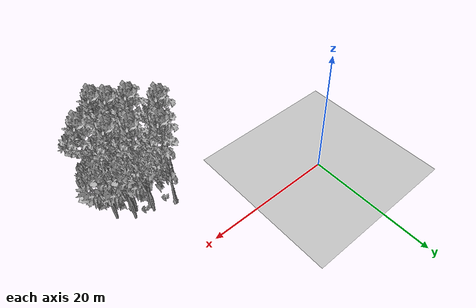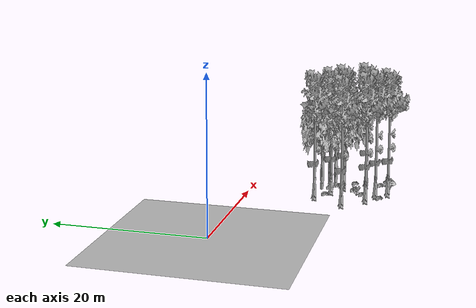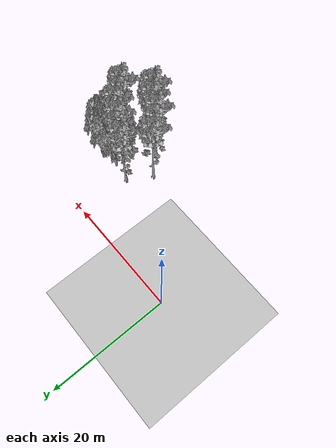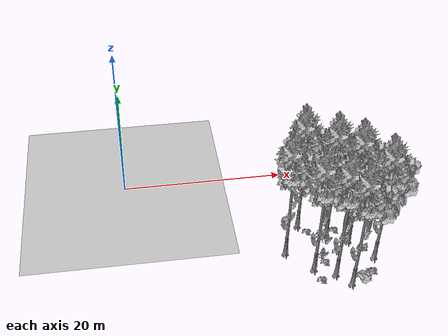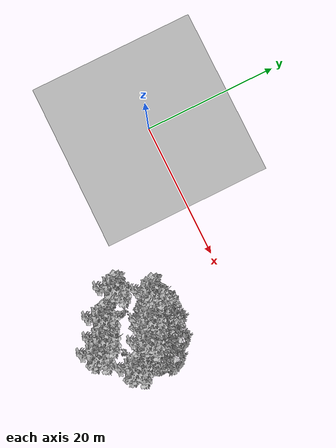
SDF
<sdf version="1.7">
 <world name="default">
  <model name="ground_plane">
   <static>1</static>
   <link name="link">
    <collision name="collision">
     <pose>-50 0 0 0 -0 0</pose>
     <geometry><plane><normal>0 0 1</normal><size>80 80</size></plane></geometry>
     <surface><contact><ode><min_depth>0.01</min_depth><max_vel>0</max_vel></ode></contact></surface>
    </collision>
    <visual name="grass">
     <cast_shadows>0</cast_shadows>
     <geometry>
      <mesh>
       <scale>0.46714285714285714 0.46714285714285714 0.1</scale>
       <uri>file://grass_plane/meshes/grass_plane.dae</uri>
      </mesh>
     </geometry>
    </visual>
   </link>
  </model>
  <model name="Tree 169">
   <static>1</static>
   <pose>17.92057606856249 -13.187530854886926 0 1.57079 -0 0</pose>
   <link name="link">
    <collision name="collision">
     <geometry><mesh><scale>3.5 5 3.5</scale><uri>model://tree_9/meshes/tree_9.obj</uri></mesh></geometry>
    </collision>
    <visual name="visual">
     <geometry><mesh><scale>3.5 5 3.5</scale><uri>model://tree_9/meshes/tree_9.obj</uri></mesh></geometry>
    </visual>
   </link>
  </model>
  <model name="Tree 199">
   <static>1</static>
   <pose>20.619014263557943 -16.028458868796307 0 1.57079 -0 0</pose>
   <link name="link">
    <collision name="collision">
     <geometry><mesh><scale>3.5 5 3.5</scale><uri>model://tree_9/meshes/tree_9.obj</uri></mesh></geometry>
    </collision>
    <visual name="visual">
     <geometry><mesh><scale>3.5 5 3.5</scale><uri>model://tree_9/meshes/tree_9.obj</uri></mesh></geometry>
    </visual>
   </link>
  </model>
  <model name="Tree 200">
   <static>1</static>
   <pose>28.03792022278185 -11.964705620287923 0 1.57079 -0 0</pose>
   <link name="link">
    <collision name="collision">
     <geometry><mesh><scale>3.5 5 3.5</scale><uri>model://tree_2/meshes/tree_2.obj</uri></mesh></geometry>
    </collision>
    <visual name="visual">
     <geometry><mesh><scale>3.5 5 3.5</scale><uri>model://tree_2/meshes/tree_2.obj</uri></mesh></geometry>
    </visual>
   </link>
  </model>
  <model name="Tree 317">
   <static>1</static>
   <pose>23.50075010087418 -9.61814095129651 0 1.57079 -0 0</pose>
   <link name="link">
    <collision name="collision">
     <geometry><mesh><scale>3.5 5 3.5</scale><uri>model://tree_2/meshes/tree_2.obj</uri></mesh></geometry>
    </collision>
    <visual name="visual">
     <geometry><mesh><scale>3.5 5 3.5</scale><uri>model://tree_2/meshes/tree_2.obj</uri></mesh></geometry>
    </visual>
   </link>
  </model>
  <model name="Tree 393">
   <static>1</static>
   <pose>22.90119774720761 -17.07613037660554 0 1.57079 -0 0</pose>
   <link name="link">
    <collision name="collision">
     <geometry><mesh><scale>3.5 5 3.5</scale><uri>model://tree_9/meshes/tree_9.obj</uri></mesh></geometry>
    </collision>
    <visual name="visual">
     <geometry><mesh><scale>3.5 5 3.5</scale><uri>model://tree_9/meshes/tree_9.obj</uri></mesh></geometry>
    </visual>
   </link>
  </model>
  <model name="Tree 399">
   <static>1</static>
   <pose>20.305927228024046 -9.129980886558098 0 1.57079 -0 0</pose>
   <link name="link">
    <collision name="collision">
     <geometry><mesh><scale>3.5 5 3.5</scale><uri>model://tree_9/meshes/tree_9.obj</uri></mesh></geometry>
    </collision>
    <visual name="visual">
     <geometry><mesh><scale>3.5 5 3.5</scale><uri>model://tree_9/meshes/tree_9.obj</uri></mesh></geometry>
    </visual>
   </link>
  </model>
  <model name="Tree 463">
   <static>1</static>
   <pose>25.41053228989219 -11.221363321497677 0 1.57079 -0 0</pose>
   <link name="link">
    <collision name="collision">
     <geometry><mesh><scale>3.5 5 3.5</scale><uri>model://tree_2/meshes/tree_2.obj</uri></mesh></geometry>
    </collision>
    <visual name="visual">
     <geometry><mesh><scale>3.5 5 3.5</scale><uri>model://tree_2/meshes/tree_2.obj</uri></mesh></geometry>
    </visual>
   </link>
  </model>
  <model name="Tree 477">
   <static>1</static>
   <pose>27.968695856251713 -15.156036403824302 0 1.57079 -0 0</pose>
   <link name="link">
    <collision name="collision">
     <geometry><mesh><scale>3.5 5 3.5</scale><uri>model://tree_9/meshes/tree_9.obj</uri></mesh></geometry>
    </collision>
    <visual name="visual">
     <geometry><mesh><scale>3.5 5 3.5</scale><uri>model://tree_9/meshes/tree_9.obj</uri></mesh></geometry>
    </visual>
   </link>
  </model>
  <model name="Tree 492">
   <static>1</static>
   <pose>24.339763761047642 -18.609069851608353 0 1.57079 -0 0</pose>
   <link name="link">
    <collision name="collision">
     <geometry><mesh><scale>3.5 5 3.5</scale><uri>model://tree_9/meshes/tree_9.obj</uri></mesh></geometry>
    </collision>
    <visual name="visual">
     <geometry><mesh><scale>3.5 5 3.5</scale><uri>model://tree_9/meshes/tree_9.obj</uri></mesh></geometry>
    </visual>
   </link>
  </model>
  <model name="Tree 517">
   <static>1</static>
   <pose>25.71173140810862 -12.33746298757353 0 1.57079 -0 0</pose>
   <link name="link">
    <collision name="collision">
     <geometry><mesh><scale>3.5 5 3.5</scale><uri>model://tree_9/meshes/tree_9.obj</uri></mesh></geometry>
    </collision>
    <visual name="visual">
     <geometry><mesh><scale>3.5 5 3.5</scale><uri>model://tree_9/meshes/tree_9.obj</uri></mesh></geometry>
    </visual>
   </link>
  </model>
  <model name="Tree 567">
   <static>1</static>
   <pose>23.402231705682823 -10.904667853027405 0 1.57079 -0 0</pose>
   <link name="link">
    <collision name="collision">
     <geometry><mesh><scale>3.5 5 3.5</scale><uri>model://tree_9/meshes/tree_9.obj</uri></mesh></geometry>
    </collision>
    <visual name="visual">
     <geometry><mesh><scale>3.5 5 3.5</scale><uri>model://tree_9/meshes/tree_9.obj</uri></mesh></geometry>
    </visual>
   </link>
  </model>
  <model name="Tree 610">
   <static>1</static>
   <pose>26.07221603397302 -10.278409194020828 0 1.57079 -0 0</pose>
   <link name="link">
    <collision name="collision">
     <geometry><mesh><scale>3.5 5 3.5</scale><uri>model://tree_2/meshes/tree_2.obj</uri></mesh></geometry>
    </collision>
    <visual name="visual">
     <geometry><mesh><scale>3.5 5 3.5</scale><uri>model://tree_2/meshes/tree_2.obj</uri></mesh></geometry>
    </visual>
   </link>
  </model>
  <model name="Bush 87">
   <static>1</static>
   <pose>27.045714401822096 -13.76837720139326 0 1.57079 -0 0</pose>
   <link name="link">
    <collision name="collision">
     <geometry><mesh><scale>2 2 2</scale><uri>model://bush_2/meshes/bush_2.obj</uri></mesh></geometry>
     <surface><contact><collide_without_contact>false</collide_without_contact></contact></surface>
    </collision>
    <visual name="visual">
     <geometry><mesh><scale>2 2 2</scale><uri>model://bush_2/meshes/bush_2.obj</uri></mesh></geometry>
    </visual>
   </link>
  </model>
  <model name="Bush 200">
   <static>1</static>
   <pose>22.963457230477125 -12.528652910418778 0 1.57079 -0 0</pose>
   <link name="link">
    <collision name="collision">
     <geometry><mesh><scale>2 2 2</scale><uri>model://bush_4/meshes/bush_4.obj</uri></mesh></geometry>
     <surface><contact><collide_without_contact>false</collide_without_contact></contact></surface>
    </collision>
    <visual name="visual">
     <geometry><mesh><scale>2 2 2</scale><uri>model://bush_4/meshes/bush_4.obj</uri></mesh></geometry>
    </visual>
   </link>
  </model>
  <model name="Bush 214">
   <static>1</static>
   <pose>22.073234687014086 -15.385571713509172 0 1.57079 -0 0</pose>
   <link name="link">
    <collision name="collision">
     <geometry><mesh><scale>2 2 2</scale><uri>model://bush_2/meshes/bush_2.obj</uri></mesh></geometry>
     <surface><contact><collide_without_contact>false</collide_without_contact></contact></surface>
    </collision>
    <visual name="visual">
     <geometry><mesh><scale>2 2 2</scale><uri>model://bush_2/meshes/bush_2.obj</uri></mesh></geometry>
    </visual>
   </link>
  </model>
  <model name="Bush 249">
   <static>1</static>
   <pose>27.0674517694072 -17.32573760603973 0 1.57079 -0 0</pose>
   <link name="link">
    <collision name="collision">
     <geometry><mesh><scale>2 2 2</scale><uri>model://bush_2/meshes/bush_2.obj</uri></mesh></geometry>
     <surface><contact><collide_without_contact>false</collide_without_contact></contact></surface>
    </collision>
    <visual name="visual">
     <geometry><mesh><scale>2 2 2</scale><uri>model://bush_2/meshes/bush_2.obj</uri></mesh></geometry>
    </visual>
   </link>
  </model>
  <model name="Bush 262">
   <static>1</static>
   <pose>25.596800140480738 -11.588161427039239 0 1.57079 -0 0</pose>
   <link name="link">
    <collision name="collision">
     <geometry><mesh><scale>2 2 2</scale><uri>model://bush_2/meshes/bush_2.obj</uri></mesh></geometry>
     <surface><contact><collide_without_contact>false</collide_without_contact></contact></surface>
    </collision>
    <visual name="visual">
     <geometry><mesh><scale>2 2 2</scale><uri>model://bush_2/meshes/bush_2.obj</uri></mesh></geometry>
    </visual>
   </link>
  </model>
  <model name="Bush 275">
   <static>1</static>
   <pose>24.379955539215864 -10.627065782127065 0 1.57079 -0 0</pose>
   <link name="link">
    <collision name="collision">
     <geometry><mesh><scale>2 2 2</scale><uri>model://bush_2/meshes/bush_2.obj</uri></mesh></geometry>
     <surface><contact><collide_without_contact>false</collide_without_contact></contact></surface>
    </collision>
    <visual name="visual">
     <geometry><mesh><scale>2 2 2</scale><uri>model://bush_2/meshes/bush_2.obj</uri></mesh></geometry>
    </visual>
   </link>
  </model>
  <model name="Bush 278">
   <static>1</static>
   <pose>21.09691618161405 -10.474166208463743 0 1.57079 -0 0</pose>
   <link name="link">
    <collision name="collision">
     <geometry><mesh><scale>2 2 2</scale><uri>model://bush_2/meshes/bush_2.obj</uri></mesh></geometry>
     <surface><contact><collide_without_contact>false</collide_without_contact></contact></surface>
    </collision>
    <visual name="visual">
     <geometry><mesh><scale>2 2 2</scale><uri>model://bush_2/meshes/bush_2.obj</uri></mesh></geometry>
    </visual>
   </link>
  </model>
  <model name="Bush 349">
   <static>1</static>
   <pose>23.803326879416936 -14.027966413198989 0 1.57079 -0 0</pose>
   <link name="link">
    <collision name="collision">
     <geometry><mesh><scale>2 2 2</scale><uri>model://bush_2/meshes/bush_2.obj</uri></mesh></geometry>
     <surface><contact><collide_without_contact>false</collide_without_contact></contact></surface>
    </collision>
    <visual name="visual">
     <geometry><mesh><scale>2 2 2</scale><uri>model://bush_2/meshes/bush_2.obj</uri></mesh></geometry>
    </visual>
   </link>
  </model>
  <model name="Bush 472">
   <static>1</static>
   <pose>25.577228794848565 -18.77005870031251 0 1.57079 -0 0</pose>
   <link name="link">
    <collision name="collision">
     <geometry><mesh><scale>2 2 2</scale><uri>model://bush_1/meshes/bush_1.obj</uri></mesh></geometry>
     <surface><contact><collide_without_contact>false</collide_without_contact></contact></surface>
    </collision>
    <visual name="visual">
     <geometry><mesh><scale>2 2 2</scale><uri>model://bush_1/meshes/bush_1.obj</uri></mesh></geometry>
    </visual>
   </link>
  </model>
  <model name="Bush 488">
   <static>1</static>
   <pose>21.92183944596693 -14.6847893400085 0 1.57079 -0 0</pose>
   <link name="link">
    <collision name="collision">
     <geometry><mesh><scale>2 2 2</scale><uri>model://bush_4/meshes/bush_4.obj</uri></mesh></geometry>
     <surface><contact><collide_without_contact>false</collide_without_contact></contact></surface>
    </collision>
    <visual name="visual">
     <geometry><mesh><scale>2 2 2</scale><uri>model://bush_4/meshes/bush_4.obj</uri></mesh></geometry>
    </visual>
   </link>
  </model>
  <model name="Bush 617">
   <static>1</static>
   <pose>21.062185046922792 -17.864093511262826 0 1.57079 -0 0</pose>
   <link name="link">
    <collision name="collision">
     <geometry><mesh><scale>2 2 2</scale><uri>model://bush_2/meshes/bush_2.obj</uri></mesh></geometry>
     <surface><contact><collide_without_contact>false</collide_without_contact></contact></surface>
    </collision>
    <visual name="visual">
     <geometry><mesh><scale>2 2 2</scale><uri>model://bush_2/meshes/bush_2.obj</uri></mesh></geometry>
    </visual>
   </link>
  </model>
 </world>
</sdf>
